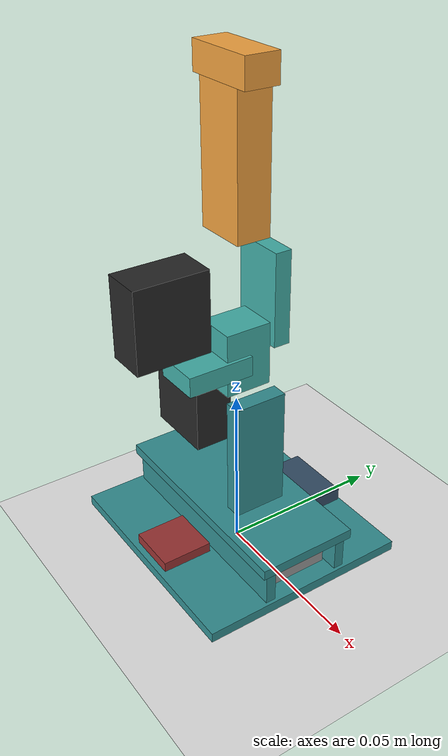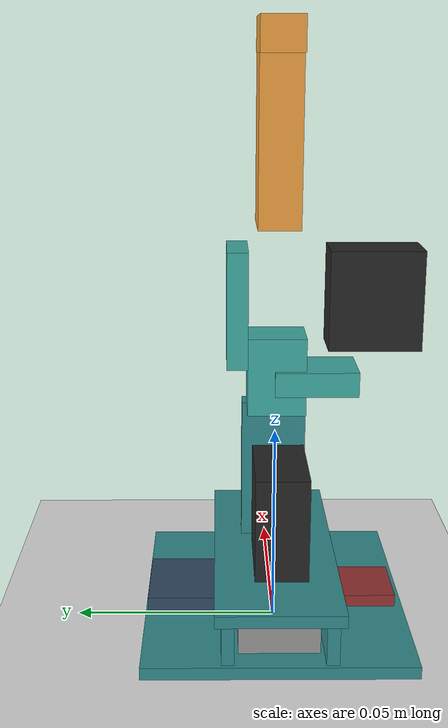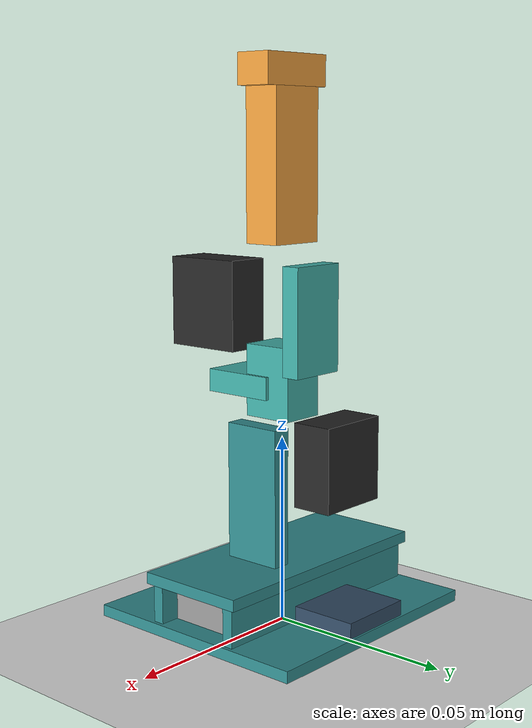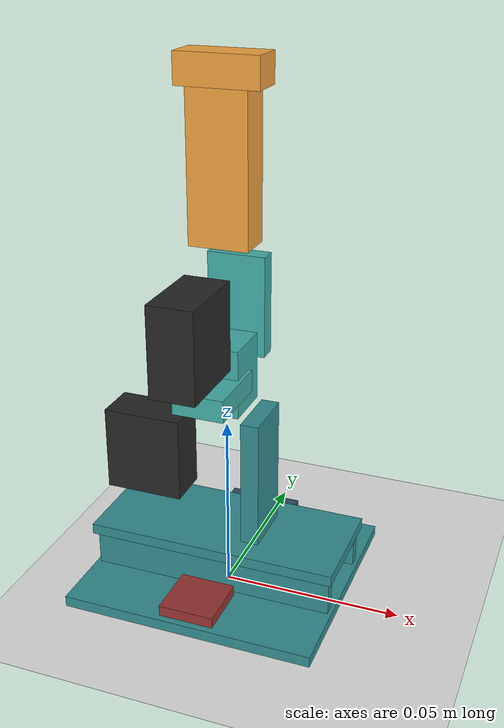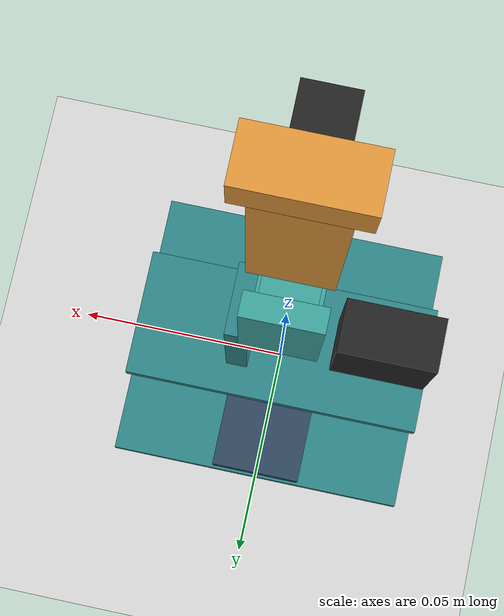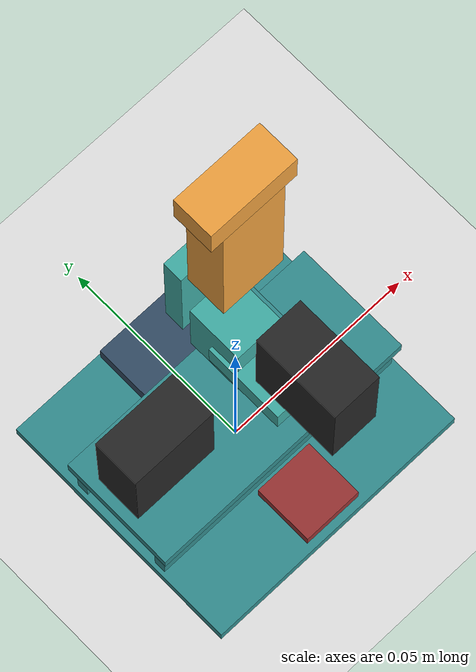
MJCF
<mujoco model="self_righting_arm_ptk7465_provisional">
  <compiler angle="radian"/>
  <option timestep="0.002" integrator="implicitfast" gravity="0 0 -9.81"/>
  <default><geom friction="0.7 0.01 0.001" condim="3" solref="0.008 1"/><joint damping="0.001" armature="0.000002"/></default>
  <worldbody>
    <light pos="0 -1 2"/>
    <geom name="floor" type="plane" size="2 2 0.1" rgba="0.9 0.9 0.9 1"/>
    <body name="base" pos="0 0 0.003">
      <freejoint/>
      <geom name="base_plate" type="box" pos="0 0 0.0015" size="0.035 0.032 0.0015" mass="0.0184" rgba="0.2 0.56 0.57 1"/>
      <geom name="battery_deck" type="box" pos="0 0 0.0145" size="0.035 0.015 0.0015" mass="0.0055" rgba="0.2 0.56 0.57 1"/>
      <geom type="box" pos="0 -0.012 0.008" size="0.034 0.0015 0.005" mass="0.002" rgba="0.2 0.56 0.57 1"/>
      <geom type="box" pos="0 0.012 0.008" size="0.034 0.0015 0.005" mass="0.002" rgba="0.2 0.56 0.57 1"/>
      <geom type="box" pos="0.0095 0 0.034" size="0.0025 0.008 0.018" mass="0.003" rgba="0.2 0.56 0.57 1"/>
      <geom type="box" pos="-0.023 0 0.036" size="0.011 0.006 0.01195" mass="0.013" rgba="0.15 0.15 0.15 1"/>
      <geom type="box" pos="0 0 0.00725" size="0.02975 0.0095 0.00375" mass="0.0145" rgba="0.6 0.6 0.6 1"/>
      <geom type="box" pos="0 0.0225 0.005" size="0.0105 0.0089 0.002" mass="0.004" rgba="0.2 0.3 0.4 1"/>
      <geom type="box" pos="0 -0.0225 0.0045" size="0.00762 0.00762 0.0015" mass="0.0015" rgba="0.6 0.2 0.2 1"/>
      <site name="imu" pos="0 0.0225 0.005" size="0.001"/>
      <body name="middle" pos="0 0 0.042">
        <joint name="j1" type="hinge" axis="1 0 0" range="-1.3963 1.3963"/>
        <geom type="box" pos="0 0 0.0205" size="0.006 0.007 0.0095" mass="0.0075" rgba="0.26 0.69 0.66 1"/>
        <geom type="box" pos="0 -0.0095 0.019" size="0.007 0.010 0.003" mass="0.003" rgba="0.26 0.69 0.66 1"/>
        <geom type="box" pos="0 0.0095 0.037" size="0.008 0.0025 0.014" mass="0.003" rgba="0.26 0.69 0.66 1"/>
        <geom type="box" pos="0 -0.023 0.039" size="0.006 0.011 0.01195" mass="0.013" rgba="0.15 0.15 0.15 1"/>
        <body name="paddle" pos="0 0 0.045">
          <joint name="j2" type="hinge" axis="0 1 0" range="-1.3963 1.3963"/>
          <geom type="box" pos="0 0 0.0305" size="0.008 0.005 0.0195" mass="0.009" rgba="0.95 0.64 0.25 1"/>
          <geom type="box" pos="0 0 0.054" size="0.011 0.005 0.004" mass="0.002" rgba="0.95 0.64 0.25 1"/>
        </body>
      </body>
    </body>
  </worldbody>
  <actuator><motor joint="j1" ctrlrange="-0.07 0.07"/><motor joint="j2" ctrlrange="-0.07 0.07"/></actuator>
  <sensor><gyro name="gyro" site="imu"/><accelerometer name="accel" site="imu"/></sensor>
</mujoco>
